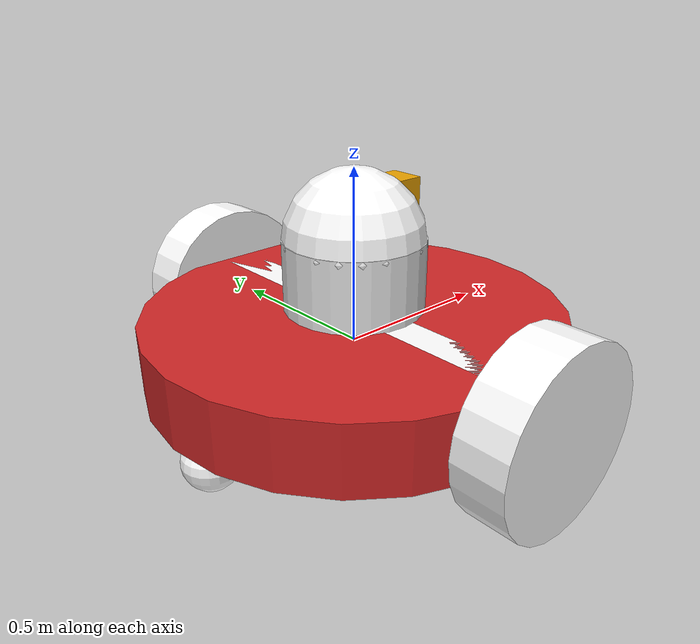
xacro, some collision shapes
<?xml version="1.0"?>
 <robot name="auv" xmlns:xacro="http://www.ros.org/wiki/xacro">

<!-- Base link -->
  <link name="base_link">
   <visual>
<origin xyz="0 0 0" rpy="0 0 0" />
    <geometry>
     <cylinder length="0.2" radius="0.6"/>
    </geometry>
   </visual>
<!--Base collision,mass and inertia -->
 <collision>
   <origin xyz="0 0 0" rpy="0.22"/>
   <geometry>
     <cylinder length="0.3" radius="0.7" />
   </geometry>
  </collision>
  <inertial>
  <mass value="3.4"/>
  <inertia ixx="0.4" ixy="0.0" ixz="0.0" iyy="0.4" iyz="0.0" izz="0.2"/>
  </inertial>
  </link>

<!-- Caster -->
   		<link name="caster">
                <visual>
      		<geometry>
       			 <sphere radius="0.08"/>
      		</geometry>
                <material name="white">
                <color rgba="1 1 1 1"/>
                </material>
	        </visual>
	<!-- Caster Collision, Inertial -->
		<collision>
			<geometry>
				 <sphere radius="0.08"/>
			</geometry>
		</collision>
		<inertial>
      		<mass value="0.05"/>
      	<inertia ixx="0.00005" ixy="0.0" ixz="0.0" iyy="0.00005" iyz="0.0" izz="0.00005"/>
    	</inertial>
        </link>
         <joint name="robots_caster" type="fixed">
		<parent link="base_link"/>
		<child link="caster"/>
		<origin xyz="-0.5 0 -0.18" rpy="0 0 0"/>
	</joint>

<!-- Caster2 -->
   		<link name="caster2">
                <visual>
      		<geometry>
       			 <sphere radius="0.08"/>
      		</geometry>
                <material name="white">
                <color rgba="1 1 1 1"/>
                </material>
	        </visual>
	<!-- Caster Collision, Inertial -->
		<collision>
			<geometry>
				 <sphere radius="0.08"/>
			</geometry>
		</collision>
		<inertial>
      		<mass value="0.05"/>
      	<inertia ixx="0.00005" ixy="0.0" ixz="0.0" iyy="0.00005" iyz="0.0" izz="0.00005"/>
    	</inertial>
        </link>
         <joint name="robots_caster2" type="fixed">
		<parent link="base_link"/>
		<child link="caster2"/>
		<origin xyz="0.5 0 -0.18" rpy="0 0 0"/>
	</joint>

	<!-- Both Legs -->
	<link name="both_legs">
		<visual>
			<origin xyz="0 0 0" rpy="0 0 0" />
			<geometry>
				<box size="0.1 1.2 0.2"/>
			</geometry>
			<material name="white">
                        <color rgba="1 1 1 1"/>
                </material>

		</visual>
	<!-- Both Legs collision, Inertial -->
		<collision>
			<origin xyz="0 0 0" rpy="0 0 0"/>
			<geometry>
				<box size="0.1 1.2 0.2"/>
			</geometry>
		</collision>
		<inertial>
 	    	<mass value="1"/>
      <inertia ixx="0.004" ixy="0.0" ixz="0.0" iyy="0.004" iyz="0.0" izz="0.003"/>
    </inertial>
	</link>
	<!-- Both Legs Joint -->
	<joint name="base_to_both_legs" type="fixed">
		<parent link="base_link"/>
		<child link="both_legs"/>
		<origin xyz="0 0 0" rpy="0 0 0"/>
	</joint>

<!-- Right_wheel -->
	<link name="right_wheel">
		<visual>
			<origin xyz="0 0 0" rpy="1.570795 0 0"/>
			<geometry>
				<cylinder length="0.15" radius="0.25"/>
			</geometry>
			<material name="white">
                        <color rgba="1 1 1 1"/>
                </material>
		</visual>
	<!-- Right Wheel Collision, Inertial -->
		<collision>
			<origin xyz="0 0 0" rpy="1.570795 0 0"/>
			<geometry>
				 <cylinder length="0.15" radius="0.25"/>
			</geometry>
		</collision>
		<inertial>
 	    	<mass value="0.5"/>
      	<inertia ixx="0.01" ixy="0.0" ixz="0.0" iyy="0.005" iyz="0.0" izz="0.05"/>
    	</inertial>
	</link>
	<!-- Right_wheel Joint -->
	<joint name="joint_right_wheel" type="continuous">
		<parent link="both_legs"/>
		<child link="right_wheel"/>
		<origin xyz="0 0.65 0" rpy="0 0 0"/>
		<axis xyz="0 1 0"/>
		<limit effort="100" velocity="100"/>
    	<joint_properties damping="0.0" friction="0.0"/>
	</joint>

	<!-- Left_wheel -->
	<link name="left_wheel">
		<visual>
			<origin xyz="0 0 0" rpy="1.570795 0 0"/>
			<geometry>
				<cylinder length="0.15" radius="0.25"/>
			</geometry>
			<material name="white">
                        <color rgba="1 1 1 1"/>
                </material>
		</visual>
	<!-- Left Wheel Collision, Inertial -->
		<collision>
			<origin xyz="0 0 0" rpy="1.570795 0 0"/>
			<geometry>
				 <cylinder length="0.15" radius="0.25"/>
			</geometry>
		</collision>
		<inertial>
 	    	<mass value="0.5"/>
	      	<inertia ixx="0.01" ixy="0.0" ixz="0.0" iyy="0.005" iyz="0.0" izz="0.05"/>
    	</inertial>
	</link>
	<!-- Left_wheel Joint -->
	<joint name="joint_left_wheel" type="continuous">
		<parent link="both_legs"/>
		<child link="left_wheel"/>
		<origin xyz="0 -0.65 0" rpy="0 0 0"/>
		<axis xyz="0 1 0"/>
		<limit effort="100" velocity="100"/>
        <joint_properties damping="0.0" friction="0.0"/>
	</joint>

<!--Head base -->
 <link name="head_base">
 <visual>
  <origin xyz="0 0 0.21" rpy="0 0 0"/>
    <geometry>
      <cylinder length="0.2" radius="0.2"/>
    </geometry>
 </visual>
 </link>
 <joint name="base_to_head" type="fixed">
  <parent link="base_link"/>
  <child link="head_base"/>
 </joint>

<!-- Head -->
 <link name="head">
   <visual>
    <geometry>
     <sphere radius="0.2"/>
    </geometry>
   <material name="white">
   <color rgba="1 1 1 1"/>
   </material>
   </visual>
   </link>
<joint name="head_camera" type="fixed">
   <parent link="base_link"/>
   <child link="head"/>
   <origin xyz="0 0 0.3"/>
   </joint>

<!-- Hokuyo Laser -->
  <link name="hokuyo">
    <visual>
      <origin xyz="0 0 0" rpy="0 0 0"/>
      <geometry>
        <mesh filename="package://ros_robotics/meshes/hokuyo.dae"/>
      </geometry>
    </visual>
  <!-- Collision, Inertial Hokuyo Laser -->
    <collision>
      <origin xyz="0 0 0" rpy="0 0 0"/>
      <geometry>
        <box size="0.1 0.1 0.1"/>
      </geometry>
    </collision>
    <inertial>
      <mass value="1e-5" />
      <origin xyz="0 0 0" rpy="0 0 0"/>
      <inertia ixx="1e-6" ixy="0" ixz="0" iyy="1e-6" iyz="0" izz="1e-6" />
    </inertial>
  </link>

  <!-- Joint Hokuyo Laser -->
  <joint name="hokuyo_joint" type="fixed">
    <axis xyz="0 1 0" />
    <origin xyz="0.15 0 0.1" rpy="0 0 0"/>
    <parent link="head"/>
    <child link="hokuyo"/>
  </joint>

<!-- camera -->
 <link name="camera">
   <visual>
    <geometry>
      <box size="0.08 0.08 0.08"/>
    </geometry>
   <material name="blue">
   <color rgba="0 0 1 1"/>
   </material>
   </visual>
<!-- Camera collision mass and inertia-->
 <collision>
   <geometry>
     <box size="0.09 0.09 0.09" />
   </geometry>
  </collision>
  <inertial>
  <mass value="0.1"/>
  <inertia ixx="0.0001" ixy="0.0" ixz="0.0" iyy="0.0001" iyz="0.0" izz="0.0001"/>
  </inertial>
  </link>
<joint name="camera_joint" type="fixed">
   <parent link="head"/>
   <child link="camera"/>
   <origin xyz="0.15 0 0.1"/>
 </joint>

 <!-- TRANSMITION -->
    <transmission name="transmission1">
      <type>transmission_interface/SimpleTransmission</type>
       <joint name="joint_right_wheel" />
      <actuator name="motor1">
        <hardwareInterface>EffortJointInterface</hardwareInterface>
        <mechanicalReduction>1</mechanicalReduction>
      </actuator>
    </transmission>

    <transmission name="transmission2">
      <type>transmission_interface/SimpleTransmission</type>
      <joint name="joint_left_wheel" />
      <actuator name="motor2">
        <hardwareInterface>EffortJointInterface</hardwareInterface>
        <mechanicalReduction>1</mechanicalReduction>
      </actuator>
    </transmission>

<gazebo reference="base_link">
  <material>Gazebo/Red</material>
</gazebo>
<gazebo reference="caster">
  <material>Gazebo/Black</material>
</gazebo>
<gazebo reference="caster2">
  <material>Gazebo/Black</material>
</gazebo>
<gazebo reference="both_legs">
  <material>Gazebo/White</material>
</gazebo>
<gazebo reference="head">
  <material>Gazebo/Red</material>
</gazebo>
<gazebo reference="head_base">
  <material>Gazebo/White</material>
</gazebo>
<gazebo reference="right_wheel">
  <material>Gazebo/Black</material>
</gazebo>
  <gazebo reference="left_wheel">
<material>Gazebo/Black</material>
</gazebo>

</robot>
